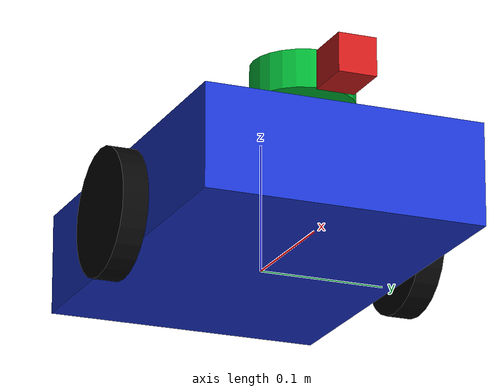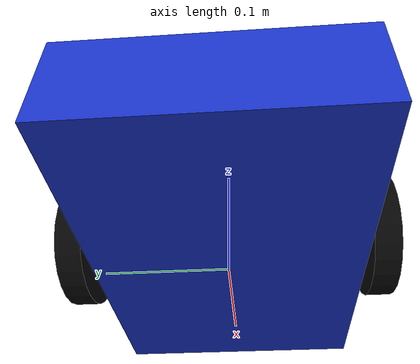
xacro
<?xml version="1.0"?>
<!--
  xacro 파일은 XML에 변수와 매크로 기능을 더한 ROS 로봇 모델 파일입니다.
  이 예제는 초보자가 link와 joint 관계를 읽을 수 있도록 단순하게 구성했습니다.
-->
<robot xmlns:xacro="http://www.ros.org/wiki/xacro" name="mini_diffbot">
  <!-- xacro:property는 반복해서 쓰는 값을 변수처럼 저장합니다. -->
  <xacro:property name="wheel_radius" value="0.05" />
  <xacro:property name="wheel_width" value="0.02" />
  <xacro:property name="base_length" value="0.32" />
  <xacro:property name="base_width" value="0.22" />
  <xacro:property name="base_height" value="0.08" />

  <!-- base_link는 로봇 몸체의 기준 link입니다. -->
  <link name="base_link">
    <!-- visual은 RViz나 Gazebo에서 보이는 모양입니다. -->
    <visual>
      <!-- origin은 이 시각 요소가 link 기준 어디에 있는지 표현합니다. -->
      <origin xyz="0 0 0.04" rpy="0 0 0" />
      <!-- geometry는 모양입니다. box는 직육면체입니다. -->
      <geometry>
        <box size="${base_length} ${base_width} ${base_height}" />
      </geometry>
      <!-- material은 색상입니다. rgba는 red, green, blue, alpha입니다. -->
      <material name="blue">
        <color rgba="0.1 0.2 0.8 1.0" />
      </material>
    </visual>
  </link>

  <!-- 왼쪽 바퀴 link입니다. -->
  <link name="left_wheel_link">
    <visual>
      <!-- 원통 cylinder는 기본 축이 z축이므로 바퀴처럼 보이게 rpy로 회전합니다. -->
      <origin xyz="0 0 0" rpy="1.5708 0 0" />
      <geometry>
        <cylinder radius="${wheel_radius}" length="${wheel_width}" />
      </geometry>
      <material name="black">
        <color rgba="0.02 0.02 0.02 1.0" />
      </material>
    </visual>
  </link>

  <!-- 오른쪽 바퀴 link입니다. -->
  <link name="right_wheel_link">
    <visual>
      <origin xyz="0 0 0" rpy="1.5708 0 0" />
      <geometry>
        <cylinder radius="${wheel_radius}" length="${wheel_width}" />
      </geometry>
      <material name="black" />
    </visual>
  </link>

  <!-- laser_link는 2D LiDAR 센서 기준 좌표계입니다. -->
  <link name="laser_link">
    <visual>
      <origin xyz="0 0 0" rpy="0 0 0" />
      <geometry>
        <cylinder radius="0.04" length="0.03" />
      </geometry>
      <material name="green">
        <color rgba="0.0 0.7 0.2 1.0" />
      </material>
    </visual>
  </link>

  <!-- camera_link는 카메라 센서 기준 좌표계입니다. -->
  <link name="camera_link">
    <visual>
      <origin xyz="0 0 0" rpy="0 0 0" />
      <geometry>
        <box size="0.04 0.03 0.03" />
      </geometry>
      <material name="red">
        <color rgba="0.8 0.1 0.1 1.0" />
      </material>
    </visual>
  </link>

  <!-- continuous joint는 계속 회전할 수 있는 바퀴 축에 사용합니다. -->
  <joint name="left_wheel_joint" type="continuous">
    <!-- parent는 기준이 되는 link입니다. -->
    <parent link="base_link" />
    <!-- child는 parent에 붙는 link입니다. -->
    <child link="left_wheel_link" />
    <!-- origin은 child link가 parent link 기준 어디에 붙는지 표현합니다. -->
    <origin xyz="0 0.12 0.03" rpy="0 0 0" />
    <!-- axis는 joint가 회전하는 축입니다. -->
    <axis xyz="0 1 0" />
  </joint>

  <joint name="right_wheel_joint" type="continuous">
    <parent link="base_link" />
    <child link="right_wheel_link" />
    <origin xyz="0 -0.12 0.03" rpy="0 0 0" />
    <axis xyz="0 1 0" />
  </joint>

  <!-- fixed joint는 움직이지 않는 센서 장착 위치에 사용합니다. -->
  <joint name="laser_joint" type="fixed">
    <parent link="base_link" />
    <child link="laser_link" />
    <origin xyz="0.08 0 0.12" rpy="0 0 0" />
  </joint>

  <joint name="camera_joint" type="fixed">
    <parent link="base_link" />
    <child link="camera_link" />
    <origin xyz="0.16 0 0.11" rpy="0 0 0" />
  </joint>
</robot>
